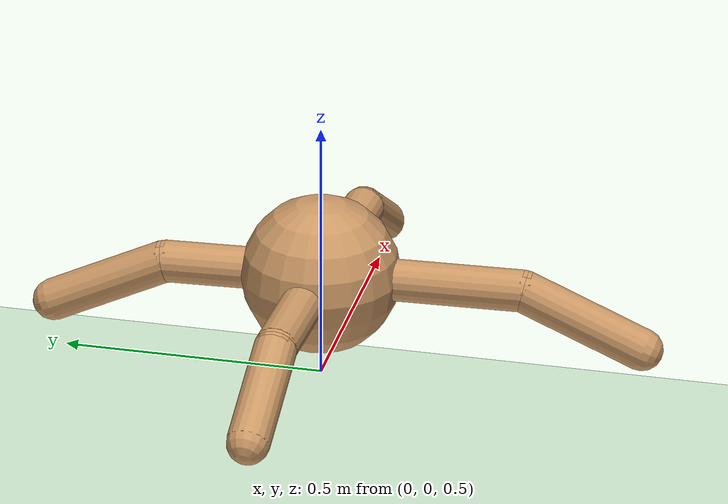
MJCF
<mujoco model="mutant_ant">
  <compiler angle="degree" coordinate="local" inertiafromgeom="true"/>
  <option integrator="RK4" timestep="0.01"/>
  <default>
    <joint armature="1" damping="1" limited="true"/>
    <geom conaffinity="1" condim="3" density="5.0" friction="1 0.5 0.5" margin="0.01" rgba="0.8 0.6 0.4 1"/>
  </default>
  <asset>
    <texture builtin="checker" height="512" name="texplane" rgb1=".2 .3 .4" rgb2=".1 0.15 0.2" type="2d" width="512"/>
    <material name="MatPlane" reflectance="0.5" shininess="1" specular="1" texrepeat="60 60" texture="texplane"/>
  </asset>
  <worldbody>
    <light cutoff="100" diffuse="1 1 1" dir="-0 0 -1.3" directional="true" exponent="1" pos="0 0 1.3" specular=".1 .1 .1"/>
    <geom conaffinity="1" condim="3" material="MatPlane" name="floor" pos="0 0 0" rgba="0.8 0.9 0.8 1" size="40 40 40" type="plane"/>
    <body name="torso" pos="0 0 0.706">
      <camera name="track" mode="trackcom" pos="0 -3 2.0" euler="60 0 0"/>
      <freejoint name="root"/>
      <geom name="torso_geom" pos="0 0 0" size="0.15" type="sphere"/>
      <body name="leg_0" pos="0 0 0" euler="0 0 -2.567">
        <geom fromto="0.0 0.0 0.0 0.1 0.0 0.0" name="aux_0_geom" size="0.04" type="capsule"/>
        <body name="leg_0_aux" pos="0.1 0.0 0">
          <joint axis="0 0 1" name="hip_0" pos="0.0 0.0 0.0" range="-34.690 30.611" type="hinge"/>
          <geom fromto="0.0 0.0 0.0 0.199 0.0 0.0" name="thigh_0_geom" size="0.04" type="capsule"/>
          <body pos="0.199 0.0 0" name="leg_0_ankle">
            <joint axis="0 1 0" name="ankle_0" pos="0.0 0.0 0.0" range="39.630 70.228" type="hinge"/>
            <geom fromto="0.0 0.0 0.0 0.153 0.0 -0.1" name="calf_0_geom" size="0.04" type="capsule"/>
          </body>
        </body>
      </body>
      <body name="leg_1" pos="0 0 0" euler="0 0 92.772">
        <geom fromto="0.0 0.0 0.0 0.1 0.0 0.0" name="aux_1_geom" size="0.04" type="capsule"/>
        <body name="leg_1_aux" pos="0.1 0.0 0">
          <joint axis="0 0 1" name="hip_1" pos="0.0 0.0 0.0" range="-28.879 26.234" type="hinge"/>
          <geom fromto="0.0 0.0 0.0 0.197 0.0 0.0" name="thigh_1_geom" size="0.04" type="capsule"/>
          <body pos="0.197 0.0 0" name="leg_1_ankle">
            <joint axis="0 1 0" name="ankle_1" pos="0.0 0.0 0.0" range="34.757 74.970" type="hinge"/>
            <geom fromto="0.0 0.0 0.0 0.218 0.0 -0.1" name="calf_1_geom" size="0.04" type="capsule"/>
          </body>
        </body>
      </body>
      <body name="leg_2" pos="0 0 0" euler="0 0 178.080">
        <geom fromto="0.0 0.0 0.0 0.1 0.0 0.0" name="aux_2_geom" size="0.04" type="capsule"/>
        <body name="leg_2_aux" pos="0.1 0.0 0">
          <joint axis="0 0 1" name="hip_2" pos="0.0 0.0 0.0" range="-28.661 32.983" type="hinge"/>
          <geom fromto="0.0 0.0 0.0 0.211 0.0 0.0" name="thigh_2_geom" size="0.04" type="capsule"/>
          <body pos="0.211 0.0 0" name="leg_2_ankle">
            <joint axis="0 1 0" name="ankle_2" pos="0.0 0.0 0.0" range="35.245 64.943" type="hinge"/>
            <geom fromto="0.0 0.0 0.0 0.182 0.0 -0.1" name="calf_2_geom" size="0.04" type="capsule"/>
          </body>
        </body>
      </body>
      <body name="leg_3" pos="0 0 0" euler="0 0 272.149">
        <geom fromto="0.0 0.0 0.0 0.1 0.0 0.0" name="aux_3_geom" size="0.04" type="capsule"/>
        <body name="leg_3_aux" pos="0.1 0.0 0">
          <joint axis="0 0 1" name="hip_3" pos="0.0 0.0 0.0" range="-29.339 31.986" type="hinge"/>
          <geom fromto="0.0 0.0 0.0 0.282 0.0 0.0" name="thigh_3_geom" size="0.04" type="capsule"/>
          <body pos="0.282 0.0 0" name="leg_3_ankle">
            <joint axis="0 1 0" name="ankle_3" pos="0.0 0.0 0.0" range="20.107 65.931" type="hinge"/>
            <geom fromto="0.0 0.0 0.0 0.224 0.0 -0.1" name="calf_3_geom" size="0.04" type="capsule"/>
          </body>
        </body>
      </body>
    </body>
  </worldbody>
  <actuator>
    <motor ctrllimited="true" ctrlrange="-1.0 1.0" joint="hip_0" gear="30"/>
    <motor ctrllimited="true" ctrlrange="-1.0 1.0" joint="ankle_0" gear="30"/>
    <motor ctrllimited="true" ctrlrange="-1.0 1.0" joint="hip_1" gear="30"/>
    <motor ctrllimited="true" ctrlrange="-1.0 1.0" joint="ankle_1" gear="30"/>
    <motor ctrllimited="true" ctrlrange="-1.0 1.0" joint="hip_2" gear="30"/>
    <motor ctrllimited="true" ctrlrange="-1.0 1.0" joint="ankle_2" gear="30"/>
    <motor ctrllimited="true" ctrlrange="-1.0 1.0" joint="hip_3" gear="30"/>
    <motor ctrllimited="true" ctrlrange="-1.0 1.0" joint="ankle_3" gear="30"/>
  </actuator>
</mujoco>
